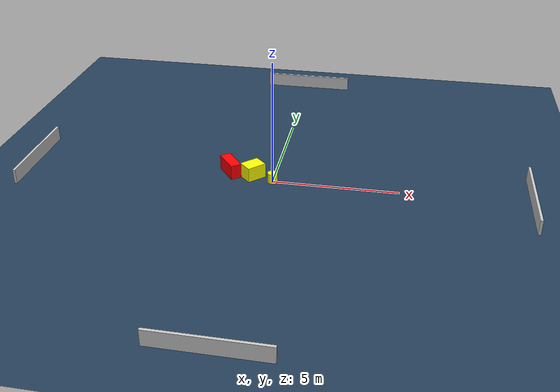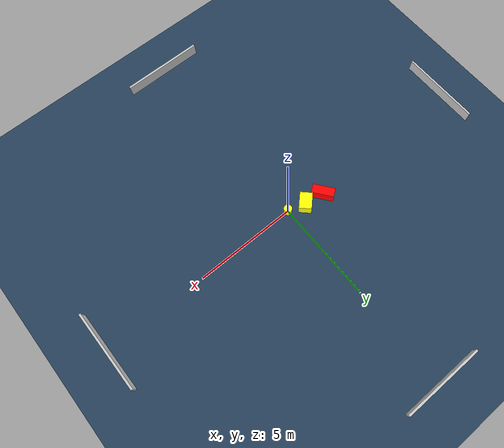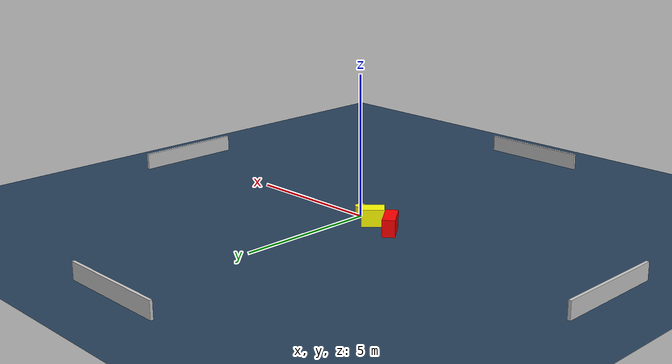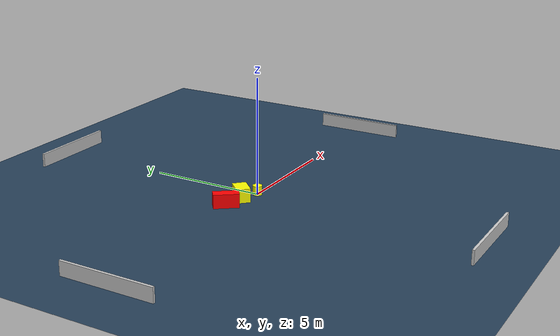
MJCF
<?xml version="1.0" ?>
<mujoco model="generated_environment">
  <option timestep="0.01" integrator="RK4" cone="elliptic"/>
  <default>
    <geom density="1"/>
  </default>
  <asset>
    <texture builtin="gradient" height="3072" name="skybox" rgb1="0.3 0.5 0.7" rgb2="0 0 0" type="skybox" width="512"/>
    <texture builtin="checker" height="300" name="groundplane" rgb1="0.2 0.3 0.4" rgb2="0.1 0.2 0.3" type="2d" width="300"/>
    <material name="groundplane" reflectance="0.2" texrepeat="5 5" texture="groundplane"/>
  </asset>
  <worldbody>
    <light dir="0 0 -1" directional="true" pos="0 0 1.5"/>
    <geom condim="3" friction="0.5 0.005 0.001" material="groundplane" name="floor" pos="0 0 0" size="0 0 0.05" type="plane"/>
    <body name="walls">
      <geom name="wall_1" condim="4" pos="-10.0 0.0 0.3" rgba="0.800000011920929 0.800000011920929 0.800000011920929 1.0" size="0.05 2.0 0.3" type="box"/>
      <geom name="wall_2" condim="4" pos="10.0 0.0 0.3" rgba="0.800000011920929 0.800000011920929 0.800000011920929 1.0" size="0.05 2.0 0.3" type="box"/>
      <geom name="wall_3" condim="4" pos="0.0 -10.0 0.3" rgba="0.800000011920929 0.800000011920929 0.800000011920929 1.0" size="2.0 0.05 0.3" type="box"/>
      <geom name="wall_4" condim="4" pos="0.0 10.0 0.3" rgba="0.800000011920929 0.800000011920929 0.800000011920929 1.0" size="2.0 0.05 0.3" type="box"/>
    </body>
    <body name="robot">
      <joint name="joint_x" type="slide" pos="0 0 0" axis="1 0 0"/>
      <joint name="joint_y" type="slide" pos="0 0 0" axis="0 1 0"/>
      <geom name="robot" type="cylinder" pos="0.0 0.0 0.2" size="0.2 0.2 0.0" mass="5.0" friction="1.0 0.005 0.0001" condim="4" rgba="1.0 1.0 0.0 1.0"/>
    </body>
    <body name="obstacle_1_movable">
      <geom name="obstacle_1_movable" condim="4" pos="-0.8519008144542587 0.2718498879998962 0.3" euler="0 0 135.306804989763" friction="0.0 0.005 0.001" rgba="1.0 1.0 0.0 1.0" size="0.299625577089335 0.4006881178885077 0.3" type="box" mass="0.1"/>
      <joint type="free"/>
    </body>
    <body name="obstacle_2_static">
      <geom name="obstacle_2_static" condim="4" pos="-1.803995324617102 0.4194193839202838 0.3" euler="0 0 37.434476312652755" friction="0.0 0.005 0.001" rgba="1.0 0.0 0.0 1.0" size="0.22058971500326874 0.5389943756318969 0.3" type="box"/>
    </body>
  </worldbody>
  <actuator>
    <motor name="actuator_x" joint="joint_x" gear="1" ctrlrange="-1 1"/>
    <motor name="actuator_y" joint="joint_y" gear="1" ctrlrange="-1 1"/>
  </actuator>
</mujoco>
